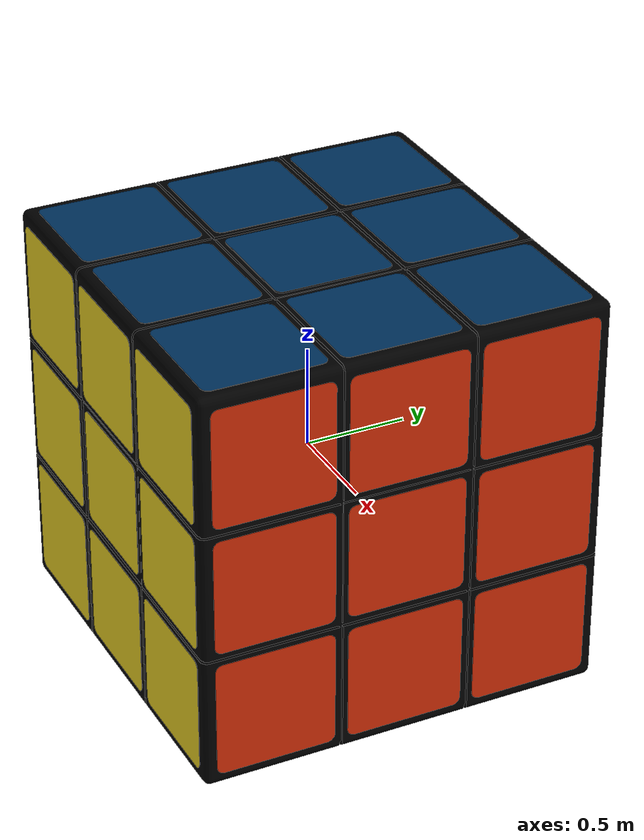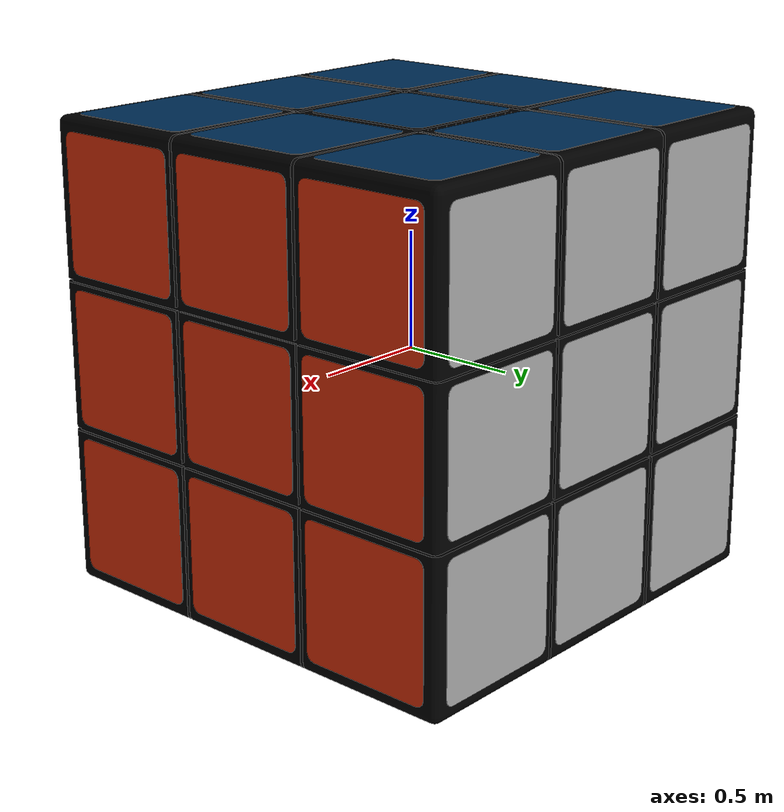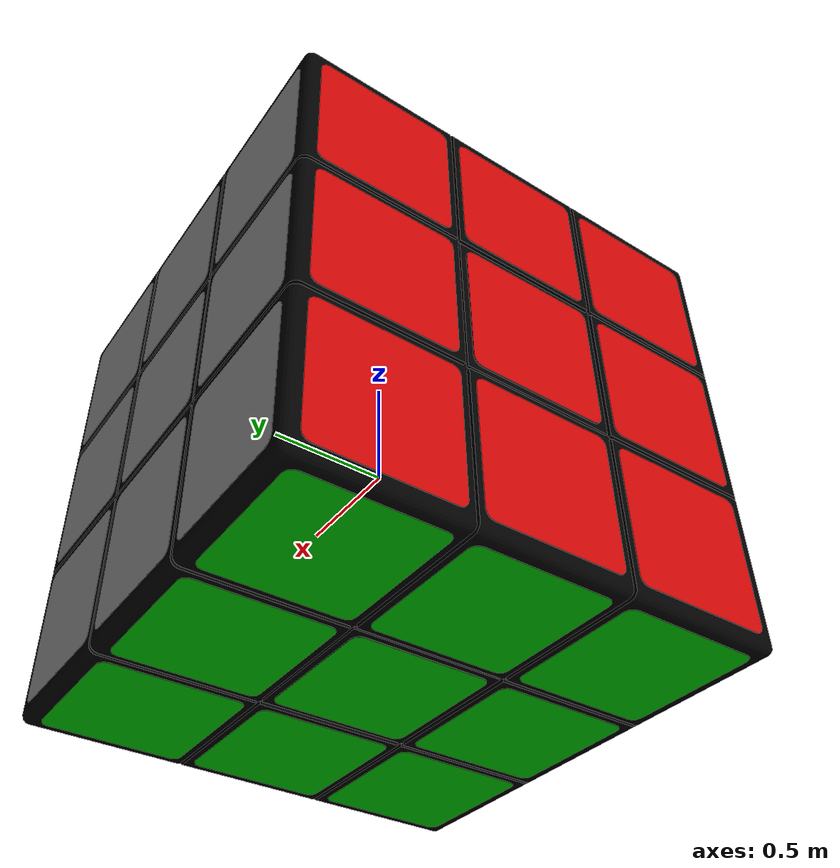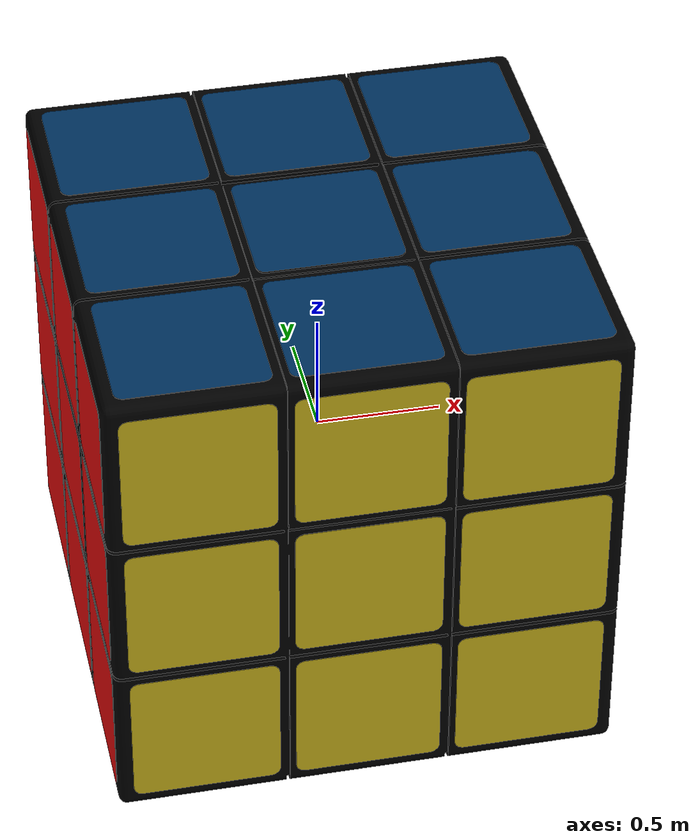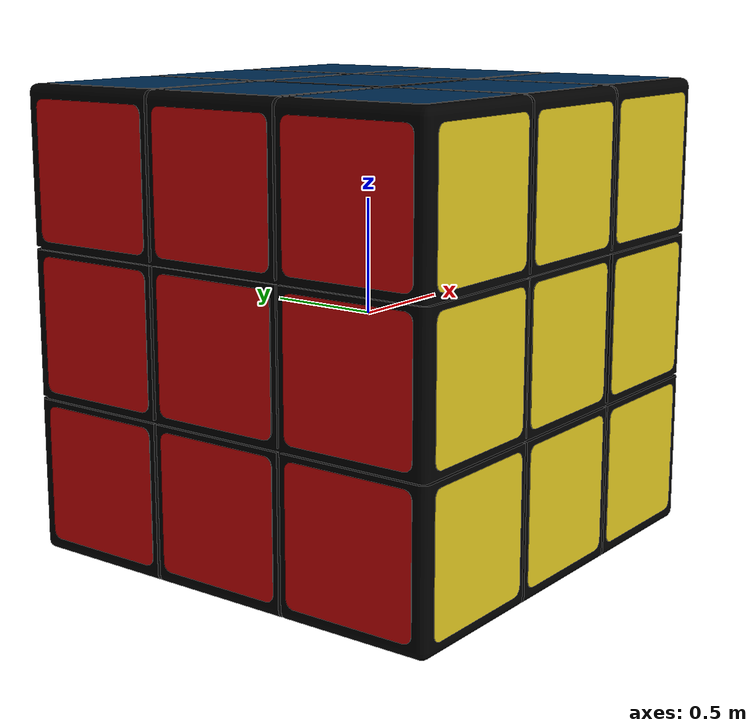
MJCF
<mujoco model="Rubic_cube">
  <default>
    <default class="visual">
      <geom type="mesh" contype="0" conaffinity="0" group="2" density="0" />
    </default>
    <default class="collision">
      <geom type="mesh" contype="1" conaffinity="1" group="3" rgba="1 1 1 1" />
    </default>
  </default>

  <asset>
    <material name="Black" specular="0.5" shininess="1.0" rgba="0.000000 0.000000 0.000000 1.000000"/>
    <material name="Blue" specular="0.5" shininess="0.850493835" rgba="0.000000 0.206883 0.393114 1.000000"/>
    <material name="Green" specular="0.5" shininess="0.864211243" rgba="0.000000 0.800000 0.002567 1.000000"/>
    <material name="Orange" specular="0.5" shininess="0.836886169" rgba="0.800000 0.171128 0.030218 1.000000"/>
    <material name="Red" specular="0.5" shininess="0.992606262" rgba="0.800000 0.021275 0.021275 1.000000"/>
    <material name="White" specular="0.5" shininess="0.81" rgba="0.615177 0.615177 0.615177 1.000000"/>
    <material name="Yellow" specular="0.5" shininess="0.8919752200000001" rgba="0.800000 0.710416 0.106449 1.000000"/>
    <mesh file="Rubic_cube_0.obj"/>
    <mesh file="Rubic_cube_1.obj"/>
    <mesh file="Rubic_cube_2.obj"/>
    <mesh file="Rubic_cube_3.obj"/>
    <mesh file="Rubic_cube_4.obj"/>
    <mesh file="Rubic_cube_5.obj"/>
    <mesh file="Rubic_cube_6.obj"/>
  </asset>
  <worldbody>
    <body name="Rubic_cube">
      <freejoint/>
      <geom mesh="Rubic_cube_0" material="Yellow" class="visual"/>
      <geom mesh="Rubic_cube_1" material="White" class="visual"/>
      <geom mesh="Rubic_cube_2" material="Orange" class="visual"/>
      <geom mesh="Rubic_cube_3" material="Blue" class="visual"/>
      <geom mesh="Rubic_cube_4" material="Green" class="visual"/>
      <geom mesh="Rubic_cube_5" material="Red" class="visual"/>
      <geom mesh="Rubic_cube_6" material="Black" class="visual"/>

      <geom mesh="Rubic_cube_0" class="collision"/>
      <geom mesh="Rubic_cube_1" class="collision"/>
      <geom mesh="Rubic_cube_2" class="collision"/>
      <geom mesh="Rubic_cube_3" class="collision"/>
      <geom mesh="Rubic_cube_4" class="collision"/>
      <geom mesh="Rubic_cube_5" class="collision"/>
      <geom mesh="Rubic_cube_6" class="collision"/>
    </body>
  </worldbody>
</mujoco>
